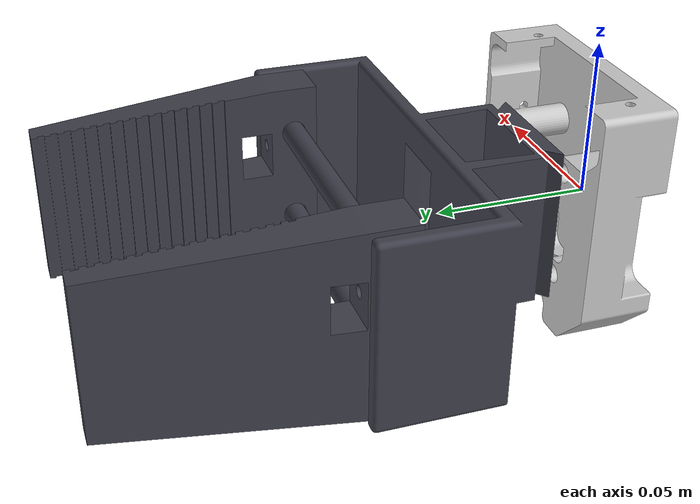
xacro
<?xml version="1.0"?>
<robot name="parallel_gripper_end_effector">

	<!-- end effector mount connector housing (female) -->
	<link name="end_effector_mount_connector">
		<visual>
			<geometry>
				<mesh filename="package://robot_description/meshes/end_effector_mount_connector.stl" scale="0.001 0.001 0.001"/>
			</geometry>
			<material name='light_grey'>
				<color rgba="0.8 0.8 0.8 1"/>
			</material>
			<origin xyz="0 0 0" rpy="0 0 0"/>
		</visual>

		<collision>
			<geometry>
				<mesh filename="package://robot_description/meshes/end_effector_mount_connector.stl" scale="0.001 0.001 0.001"/>
			</geometry>
			<origin xyz="0 0 0" rpy="0 0 0"/>
		</collision>

	</link>

	<!-- end effector mount insert (male) -->
	<link name="end_effector_main_frame">
		<visual>
			<geometry>
				<mesh filename="package://robot_description/meshes/end_effector_main_frame.stl" scale="0.001 0.001 0.001"/>
			</geometry>
			<material name='dark_grey'>
				<color rgba="0.25 0.25 0.3 1"/>
			</material>
		</visual>

		<collision>
			<geometry>
				<mesh filename="package://robot_description/meshes/end_effector_main_frame.stl" scale="0.001 0.001 0.001"/>
			</geometry>
		</collision>
	</link>

	<!-- gripper fingers (left) -->
	<link name="gripper_finger_left">
		<visual>
			<geometry>
				<mesh filename="package://robot_description/meshes/gripper_finger_left.stl" scale="0.001 0.001 0.001"/>
			</geometry>
			<material name='dark_grey'/>
		</visual>

		<collision>
			<geometry>
				<mesh filename="package://robot_description/meshes/gripper_finger_left.stl" scale="0.001 0.001 0.001"/>
			</geometry>
		</collision>
	</link>

	<!-- gripper fingers (right) -->
	<link name="gripper_finger_right">
		<visual>
			<geometry>
				<mesh filename="package://robot_description/meshes/gripper_finger_right.stl" scale="0.001 0.001 0.001"/>
			</geometry>
			<material name='dark_grey'/>
		</visual>

		<collision>
			<geometry>
				<mesh filename="package://robot_description/meshes/gripper_finger_right.stl" scale="0.001 0.001 0.001"/>
			</geometry>
		</collision>
	</link>

	<!-- slider rod upper -->
	<link name="slider_rod_upper">
		<visual>
			<geometry>
				<mesh filename="package://robot_description/meshes/slider_rod.stl" scale="0.001 0.001 0.001"/>
			</geometry>
			<material name='dark_grey'/>
		</visual>
	</link>

	<!-- slider rod lower -->
	<link name="slider_rod_lower">
		<visual>
			<geometry>
				<mesh filename="package://robot_description/meshes/slider_rod.stl" scale="0.001 0.001 0.001"/>
			</geometry>
			<material name='dark_grey'/>
		</visual>
	</link>

	<!-- joint between wrist_link and end effector mount-->

	<!-- joint between main frame and end effector mount-->
	<joint name="end_effector_mount_connector_joint" type="fixed">
		<parent link="end_effector_mount_connector"/>
		<child link="end_effector_main_frame"/>
		<origin xyz="0 0.0525 -0.03" rpy="0 0 3.14"/>
	</joint>

	<!-- joint between main frame to slider 1-->
	<joint name="frame_slider_upper_joint" type="fixed">
		<parent link="end_effector_main_frame"/>
		<child link="slider_rod_upper"/>
		<origin xyz="0 0.036 0.0405" rpy="0 0 0"/>
	</joint>

	<!-- joint between main frame to slider 2-->
	<joint name="frame_slider_lower_joint" type="fixed">
		<parent link="end_effector_main_frame"/>
		<child link="slider_rod_lower"/>
		<origin xyz="0 0.036 0.0105" rpy="0 0 0"/>
	</joint>

	<!-- joint between slider rod upper and left finger-->
	<joint name="left_finger_slide" type="fixed">
		<parent link="slider_rod_upper"/>
		<child link="gripper_finger_left"/>
		<origin xyz="0.029 -0.076 -0.040" rpy="0 0 0"/>
	</joint>

	<!-- joint between slider rod upper and left finger-->
	<joint name="right_finger_slide" type="fixed">
		<parent link="slider_rod_upper"/>
		<child link="gripper_finger_right"/>
		<origin xyz="-0.029 -0.076 -0.040" rpy="0 0 0"/>
	</joint>
</robot>
